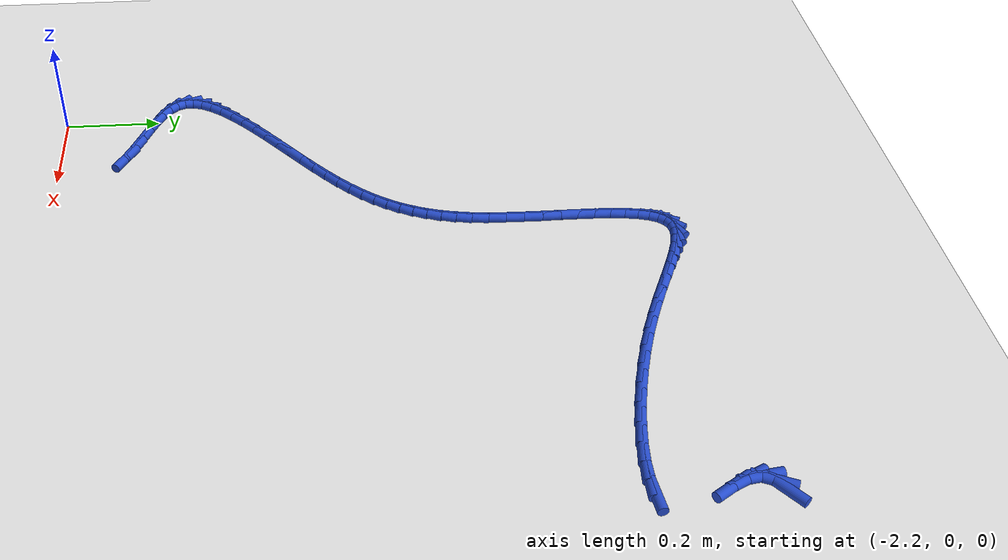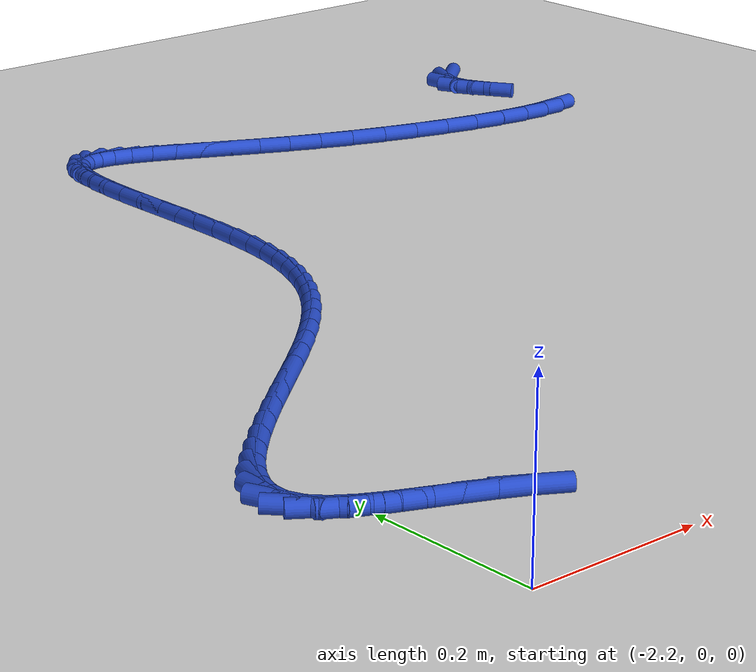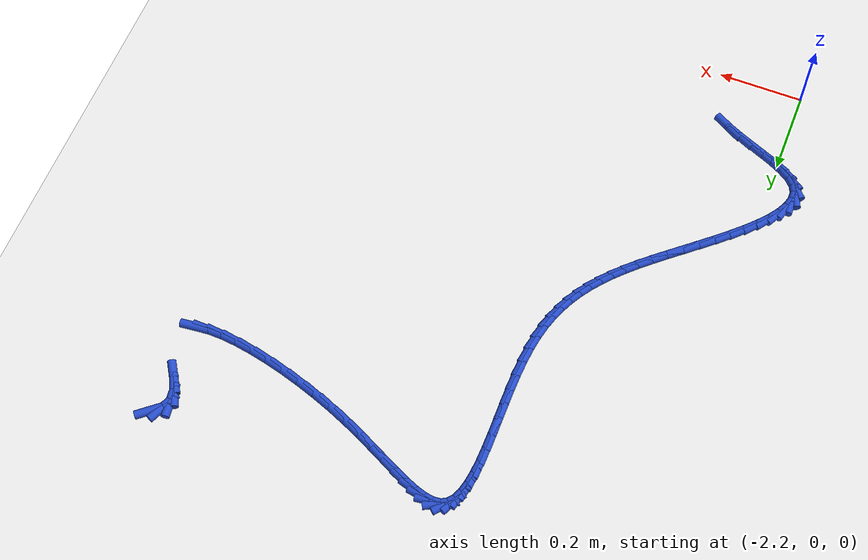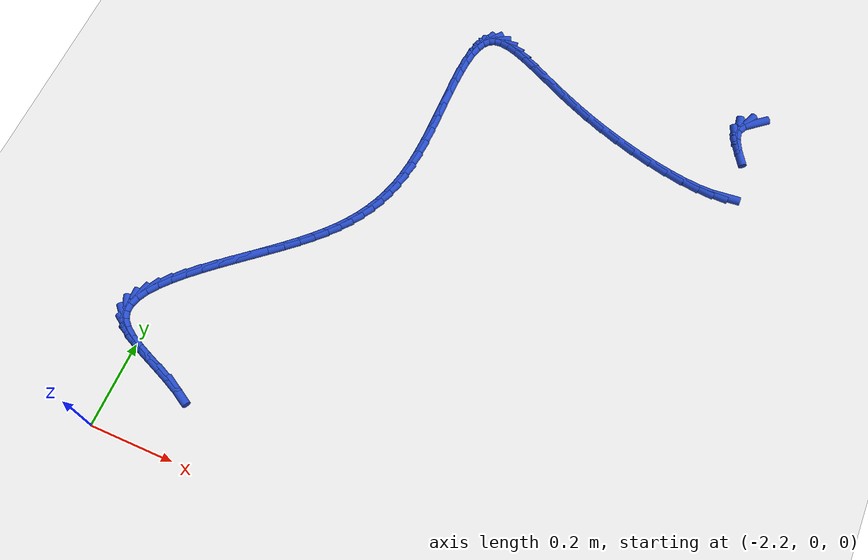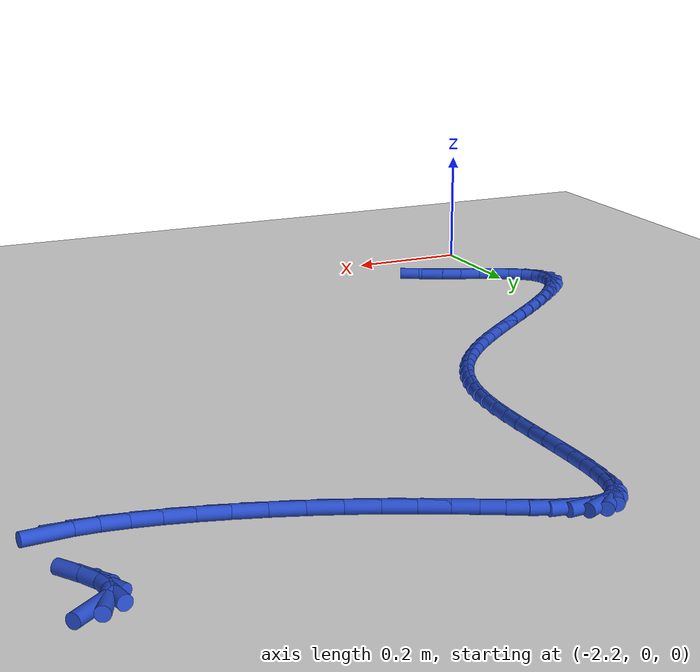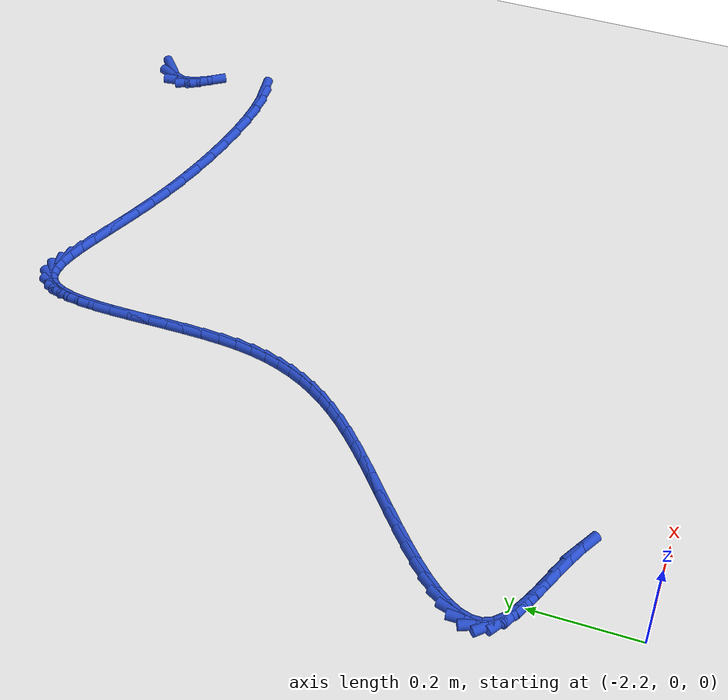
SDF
<sdf version="1.6">
 <world name="default">
  <model name="ground_plane">
   <static>1</static>
   <link name="link">
    <collision name="collision">
     <geometry><plane><normal>0 0 1</normal><size>100 100</size></plane></geometry>
     <surface><friction><ode><mu>100</mu><mu2>50</mu2></ode></friction></surface>
    </collision>
    <visual name="visual">
     <cast_shadows>0</cast_shadows>
     <geometry><plane><normal>0 0 1</normal><size>100 100</size></plane></geometry>
     <material>
      <script><uri>file://media/materials/scripts/gazebo.material</uri><name>Gazebo/WhiteGlow</name></script>
     </material>
    </visual>
   </link>
  </model>
  <model name="line">
   <link name="link_70">
    <pose>-1.099920384116828 1.2805118571543863 0.01 0 1.57 0.6831867642673207</pose>
    <collision name="collision">
     <geometry><cylinder><radius>0.01</radius><length>0.08</length></cylinder></geometry>
    </collision>
    <visual name="visual">
     <material>
      <script><name>Gazebo/Blue</name><uri>file://media/materials/scripts/gazebo.material</uri></script>
     </material>
     <geometry><cylinder><radius>0.01</radius><length>0.08</length></cylinder></geometry>
    </visual>
   </link>
   <link name="link_71">
    <pose>-1.1184490033062418 1.2654305671250845 0.01 0 1.57 1.161574097288925</pose>
    <collision name="collision">
     <geometry><cylinder><radius>0.01</radius><length>0.08</length></cylinder></geometry>
    </collision>
    <visual name="visual">
     <material>
      <script><name>Gazebo/Blue</name><uri>file://media/materials/scripts/gazebo.material</uri></script>
     </material>
     <geometry><cylinder><radius>0.01</radius><length>0.08</length></cylinder></geometry>
    </visual>
   </link>
   <link name="link_72">
    <pose>-1.1268550989956125 1.2460485900413598 0.01 0 1.57 -1.4281970652236406</pose>
    <collision name="collision">
     <geometry><cylinder><radius>0.01</radius><length>0.08</length></cylinder></geometry>
    </collision>
    <visual name="visual">
     <material>
      <script><name>Gazebo/Blue</name><uri>file://media/materials/scripts/gazebo.material</uri></script>
     </material>
     <geometry><cylinder><radius>0.01</radius><length>0.08</length></cylinder></geometry>
    </visual>
   </link>
   <link name="link_73">
    <pose>-1.12344103782641 1.222269444426144 0.01 0 1.57 -1.1134419527512758</pose>
    <collision name="collision">
     <geometry><cylinder><radius>0.01</radius><length>0.08</length></cylinder></geometry>
    </collision>
    <visual name="visual">
     <material>
      <script><name>Gazebo/Blue</name><uri>file://media/materials/scripts/gazebo.material</uri></script>
     </material>
     <geometry><cylinder><radius>0.01</radius><length>0.08</length></cylinder></geometry>
    </visual>
   </link>
   <link name="link_74">
    <pose>-1.1101076443937057 1.1951777530147727 0.01 0 1.57 -1.004112221750847</pose>
    <collision name="collision">
     <geometry><cylinder><radius>0.01</radius><length>0.08</length></cylinder></geometry>
    </collision>
    <visual name="visual">
     <material>
      <script><name>Gazebo/Blue</name><uri>file://media/materials/scripts/gazebo.material</uri></script>
     </material>
     <geometry><cylinder><radius>0.01</radius><length>0.08</length></cylinder></geometry>
    </visual>
   </link>
   <link name="link_81">
    <pose>-1.1062383961509725 1.0658347140959392 0.01 0 1.57 0.10056372766646694</pose>
    <collision name="collision">
     <geometry><cylinder><radius>0.01</radius><length>0.08</length></cylinder></geometry>
    </collision>
    <visual name="visual">
     <material>
      <script><name>Gazebo/Blue</name><uri>file://media/materials/scripts/gazebo.material</uri></script>
     </material>
     <geometry><cylinder><radius>0.01</radius><length>0.08</length></cylinder></geometry>
    </visual>
   </link>
   <link name="link_82">
    <pose>-1.134003650895144 1.0630330858577721 0.01 0 1.57 -0.01656659060833124</pose>
    <collision name="collision">
     <geometry><cylinder><radius>0.01</radius><length>0.08</length></cylinder></geometry>
    </collision>
    <visual name="visual">
     <material>
      <script><name>Gazebo/Blue</name><uri>file://media/materials/scripts/gazebo.material</uri></script>
     </material>
     <geometry><cylinder><radius>0.01</radius><length>0.08</length></cylinder></geometry>
    </visual>
   </link>
   <link name="link_83">
    <pose>-1.1668860385566817 1.0635778847536657 0.01 0 1.57 -0.09686056270876396</pose>
    <collision name="collision">
     <geometry><cylinder><radius>0.01</radius><length>0.08</length></cylinder></geometry>
    </collision>
    <visual name="visual">
     <material>
      <script><name>Gazebo/Blue</name><uri>file://media/materials/scripts/gazebo.material</uri></script>
     </material>
     <geometry><cylinder><radius>0.01</radius><length>0.08</length></cylinder></geometry>
    </visual>
   </link>
   <link name="link_84">
    <pose>-1.2039945146227147 1.0671835156576999 0.01 0 1.57 -0.15648243109726961</pose>
    <collision name="collision">
     <geometry><cylinder><radius>0.01</radius><length>0.08</length></cylinder></geometry>
    </collision>
    <visual name="visual">
     <material>
      <script><name>Gazebo/Blue</name><uri>file://media/materials/scripts/gazebo.material</uri></script>
     </material>
     <geometry><cylinder><radius>0.01</radius><length>0.08</length></cylinder></geometry>
    </visual>
   </link>
   <link name="link_85">
    <pose>-1.2444380345803745 1.0735643834439572 0.01 0 1.57 -0.20395603534226012</pose>
    <collision name="collision">
     <geometry><cylinder><radius>0.01</radius><length>0.08</length></cylinder></geometry>
    </collision>
    <visual name="visual">
     <material>
      <script><name>Gazebo/Blue</name><uri>file://media/materials/scripts/gazebo.material</uri></script>
     </material>
     <geometry><cylinder><radius>0.01</radius><length>0.08</length></cylinder></geometry>
    </visual>
   </link>
   <link name="link_86">
    <pose>-1.287325553916791 1.0824348929865188 0.01 0 1.57 -0.24422536850942414</pose>
    <collision name="collision">
     <geometry><cylinder><radius>0.01</radius><length>0.08</length></cylinder></geometry>
    </collision>
    <visual name="visual">
     <material>
      <script><name>Gazebo/Blue</name><uri>file://media/materials/scripts/gazebo.material</uri></script>
     </material>
     <geometry><cylinder><radius>0.01</radius><length>0.08</length></cylinder></geometry>
    </visual>
   </link>
   <link name="link_87">
    <pose>-1.3317660281190946 1.0935094491594661 0.01 0 1.57 -0.280483672853604</pose>
    <collision name="collision">
     <geometry><cylinder><radius>0.01</radius><length>0.08</length></cylinder></geometry>
    </collision>
    <visual name="visual">
     <material>
      <script><name>Gazebo/Blue</name><uri>file://media/materials/scripts/gazebo.material</uri></script>
     </material>
     <geometry><cylinder><radius>0.01</radius><length>0.08</length></cylinder></geometry>
    </visual>
   </link>
   <link name="link_88">
    <pose>-1.3768684126744142 1.1065024568368798 0.01 0 1.57 -0.31507938046985046</pose>
    <collision name="collision">
     <geometry><cylinder><radius>0.01</radius><length>0.08</length></cylinder></geometry>
    </collision>
    <visual name="visual">
     <material>
      <script><name>Gazebo/Blue</name><uri>file://media/materials/scripts/gazebo.material</uri></script>
     </material>
     <geometry><cylinder><radius>0.01</radius><length>0.08</length></cylinder></geometry>
    </visual>
   </link>
   <link name="link_89">
    <pose>-1.4217416630698811 1.1211283208928418 0.01 0 1.57 -0.3500404849318791</pose>
    <collision name="collision">
     <geometry><cylinder><radius>0.01</radius><length>0.08</length></cylinder></geometry>
    </collision>
    <visual name="visual">
     <material>
      <script><name>Gazebo/Blue</name><uri>file://media/materials/scripts/gazebo.material</uri></script>
     </material>
     <geometry><cylinder><radius>0.01</radius><length>0.08</length></cylinder></geometry>
    </visual>
   </link>
   <link name="link_90">
    <pose>-1.465494734792625 1.1371014462014335 0.01 0 1.57 -0.3868470926862169</pose>
    <collision name="collision">
     <geometry><cylinder><radius>0.01</radius><length>0.08</length></cylinder></geometry>
    </collision>
    <visual name="visual">
     <material>
      <script><name>Gazebo/Blue</name><uri>file://media/materials/scripts/gazebo.material</uri></script>
     </material>
     <geometry><cylinder><radius>0.01</radius><length>0.08</length></cylinder></geometry>
    </visual>
   </link>
   <link name="link_91">
    <pose>-1.5072711881035423 1.154120088410316 0.01 0 1.57 -0.4191643377994727</pose>
    <collision name="collision">
     <geometry><cylinder><radius>0.01</radius><length>0.08</length></cylinder></geometry>
    </collision>
    <visual name="visual">
     <material>
      <script><name>Gazebo/Blue</name><uri>file://media/materials/scripts/gazebo.material</uri></script>
     </material>
     <geometry><cylinder><radius>0.01</radius><length>0.08</length></cylinder></geometry>
    </visual>
   </link>
   <link name="link_92">
    <pose>-1.5466644424680127 1.1716725645557886 0.01 0 1.57 -0.44105376909332494</pose>
    <collision name="collision">
     <geometry><cylinder><radius>0.01</radius><length>0.08</length></cylinder></geometry>
    </collision>
    <visual name="visual">
     <material>
      <script><name>Gazebo/Blue</name><uri>file://media/materials/scripts/gazebo.material</uri></script>
     </material>
     <geometry><cylinder><radius>0.01</radius><length>0.08</length></cylinder></geometry>
    </visual>
   </link>
   <link name="link_93">
    <pose>-1.5835824651615769 1.1891003996783167 0.01 0 1.57 -0.4510681153422886</pose>
    <collision name="collision">
     <geometry><cylinder><radius>0.01</radius><length>0.08</length></cylinder></geometry>
    </collision>
    <visual name="visual">
     <material>
      <script><name>Gazebo/Blue</name><uri>file://media/materials/scripts/gazebo.material</uri></script>
     </material>
     <geometry><cylinder><radius>0.01</radius><length>0.08</length></cylinder></geometry>
    </visual>
   </link>
   <link name="link_94">
    <pose>-1.6179396752051254 1.2057421079419708 0.01 0 1.57 -0.4468252690239972</pose>
    <collision name="collision">
     <geometry><cylinder><radius>0.01</radius><length>0.08</length></cylinder></geometry>
    </collision>
    <visual name="visual">
     <material>
      <script><name>Gazebo/Blue</name><uri>file://media/materials/scripts/gazebo.material</uri></script>
     </material>
     <geometry><cylinder><radius>0.01</radius><length>0.08</length></cylinder></geometry>
    </visual>
   </link>
   <link name="link_95">
    <pose>-1.649650491619549 1.2209362035108218 0.01 0 1.57 -0.4241307232656373</pose>
    <collision name="collision">
     <geometry><cylinder><radius>0.01</radius><length>0.08</length></cylinder></geometry>
    </collision>
    <visual name="visual">
     <material>
      <script><name>Gazebo/Blue</name><uri>file://media/materials/scripts/gazebo.material</uri></script>
     </material>
     <geometry><cylinder><radius>0.01</radius><length>0.08</length></cylinder></geometry>
    </visual>
   </link>
   <link name="link_96">
    <pose>-1.6786293334257367 1.2340212005489395 0.01 0 1.57 -0.37555044443479474</pose>
    <collision name="collision">
     <geometry><cylinder><radius>0.01</radius><length>0.08</length></cylinder></geometry>
    </collision>
    <visual name="visual">
     <material>
      <script><name>Gazebo/Blue</name><uri>file://media/materials/scripts/gazebo.material</uri></script>
     </material>
     <geometry><cylinder><radius>0.01</radius><length>0.08</length></cylinder></geometry>
    </visual>
   </link>
   <link name="link_97">
    <pose>-1.7047906196445792 1.2443356132203949 0.01 0 1.57 -0.2877012151988591</pose>
    <collision name="collision">
     <geometry><cylinder><radius>0.01</radius><length>0.08</length></cylinder></geometry>
    </collision>
    <visual name="visual">
     <material>
      <script><name>Gazebo/Blue</name><uri>file://media/materials/scripts/gazebo.material</uri></script>
     </material>
     <geometry><cylinder><radius>0.01</radius><length>0.08</length></cylinder></geometry>
    </visual>
   </link>
   <link name="link_98">
    <pose>-1.728048769296967 1.251217955689258 0.01 0 1.57 -0.13672738874850274</pose>
    <collision name="collision">
     <geometry><cylinder><radius>0.01</radius><length>0.08</length></cylinder></geometry>
    </collision>
    <visual name="visual">
     <material>
      <script><name>Gazebo/Blue</name><uri>file://media/materials/scripts/gazebo.material</uri></script>
     </material>
     <geometry><cylinder><radius>0.01</radius><length>0.08</length></cylinder></geometry>
    </visual>
   </link>
   <link name="link_99">
    <pose>-1.7483182014037908 1.2540067421196002 0.01 0 1.57 0.11385499967966944</pose>
    <collision name="collision">
     <geometry><cylinder><radius>0.01</radius><length>0.08</length></cylinder></geometry>
    </collision>
    <visual name="visual">
     <material>
      <script><name>Gazebo/Blue</name><uri>file://media/materials/scripts/gazebo.material</uri></script>
     </material>
     <geometry><cylinder><radius>0.01</radius><length>0.08</length></cylinder></geometry>
    </visual>
   </link>
   <link name="link_100">
    <pose>-1.765513334985941 1.252040486675492 0.01 0 1.57 0.4838469332792329</pose>
    <collision name="collision">
     <geometry><cylinder><radius>0.01</radius><length>0.08</length></cylinder></geometry>
    </collision>
    <visual name="visual">
     <material>
      <script><name>Gazebo/Blue</name><uri>file://media/materials/scripts/gazebo.material</uri></script>
     </material>
     <geometry><cylinder><radius>0.01</radius><length>0.08</length></cylinder></geometry>
    </visual>
   </link>
   <link name="link_101">
    <pose>-1.7795507868649199 1.2446636615476747 0.01 0 1.57 0.8703749622442536</pose>
    <collision name="collision">
     <geometry><cylinder><radius>0.01</radius><length>0.08</length></cylinder></geometry>
    </collision>
    <visual name="visual">
     <material>
      <script><name>Gazebo/Blue</name><uri>file://media/materials/scripts/gazebo.material</uri></script>
     </material>
     <geometry><cylinder><radius>0.01</radius><length>0.08</length></cylinder></geometry>
    </visual>
   </link>
   <link name="link_102">
    <pose>-1.7905103596440324 1.2316631199302177 0.01 0 1.57 1.1438022326609099</pose>
    <collision name="collision">
     <geometry><cylinder><radius>0.01</radius><length>0.08</length></cylinder></geometry>
    </collision>
    <visual name="visual">
     <material>
      <script><name>Gazebo/Blue</name><uri>file://media/materials/scripts/gazebo.material</uri></script>
     </material>
     <geometry><cylinder><radius>0.01</radius><length>0.08</length></cylinder></geometry>
    </visual>
   </link>
   <link name="link_103">
    <pose>-1.7987446627440182 1.213565268134376 0.01 0 1.57 1.3159304049566174</pose>
    <collision name="collision">
     <geometry><cylinder><radius>0.01</radius><length>0.08</length></cylinder></geometry>
    </collision>
    <visual name="visual">
     <material>
      <script><name>Gazebo/Blue</name><uri>file://media/materials/scripts/gazebo.material</uri></script>
     </material>
     <geometry><cylinder><radius>0.01</radius><length>0.08</length></cylinder></geometry>
    </visual>
   </link>
   <link name="link_104">
    <pose>-1.804632259217156 1.1909668702772969 0.01 0 1.57 1.4239689037625485</pose>
    <collision name="collision">
     <geometry><cylinder><radius>0.01</radius><length>0.08</length></cylinder></geometry>
    </collision>
    <visual name="visual">
     <material>
      <script><name>Gazebo/Blue</name><uri>file://media/materials/scripts/gazebo.material</uri></script>
     </material>
     <geometry><cylinder><radius>0.01</radius><length>0.08</length></cylinder></geometry>
    </visual>
   </link>
   <link name="link_105">
    <pose>-1.808551712115724 1.1644646904761278 0.01 0 1.57 1.4927953892031909</pose>
    <collision name="collision">
     <geometry><cylinder><radius>0.01</radius><length>0.08</length></cylinder></geometry>
    </collision>
    <visual name="visual">
     <material>
      <script><name>Gazebo/Blue</name><uri>file://media/materials/scripts/gazebo.material</uri></script>
     </material>
     <geometry><cylinder><radius>0.01</radius><length>0.08</length></cylinder></geometry>
    </visual>
   </link>
   <link name="link_106">
    <pose>-1.810881584492001 1.1346554928480164 0.01 0 1.57 1.5364041802209978</pose>
    <collision name="collision">
     <geometry><cylinder><radius>0.01</radius><length>0.08</length></cylinder></geometry>
    </collision>
    <visual name="visual">
     <material>
      <script><name>Gazebo/Blue</name><uri>file://media/materials/scripts/gazebo.material</uri></script>
     </material>
     <geometry><cylinder><radius>0.01</radius><length>0.08</length></cylinder></geometry>
    </visual>
   </link>
   <link name="link_107">
    <pose>-1.8120004393982652 1.102136041510109 0.01 0 1.57 1.5625269175999292</pose>
    <collision name="collision">
     <geometry><cylinder><radius>0.01</radius><length>0.08</length></cylinder></geometry>
    </collision>
    <visual name="visual">
     <material>
      <script><name>Gazebo/Blue</name><uri>file://media/materials/scripts/gazebo.material</uri></script>
     </material>
     <geometry><cylinder><radius>0.01</radius><length>0.08</length></cylinder></geometry>
    </visual>
   </link>
   <link name="link_108">
    <pose>-1.8122868398867953 1.0675031005795537 0.01 0 1.57 -1.5661630979140662</pose>
    <collision name="collision">
     <geometry><cylinder><radius>0.01</radius><length>0.08</length></cylinder></geometry>
    </collision>
    <visual name="visual">
     <material>
      <script><name>Gazebo/Blue</name><uri>file://media/materials/scripts/gazebo.material</uri></script>
     </material>
     <geometry><cylinder><radius>0.01</radius><length>0.08</length></cylinder></geometry>
    </visual>
   </link>
   <link name="link_109">
    <pose>-1.8121193490098704 1.0313534341734967 0.01 0 1.57 -1.5642460663271653</pose>
    <collision name="collision">
     <geometry><cylinder><radius>0.01</radius><length>0.08</length></cylinder></geometry>
    </collision>
    <visual name="visual">
     <material>
      <script><name>Gazebo/Blue</name><uri>file://media/materials/scripts/gazebo.material</uri></script>
     </material>
     <geometry><cylinder><radius>0.01</radius><length>0.08</length></cylinder></geometry>
    </visual>
   </link>
   <link name="link_110">
    <pose>-1.8118765298197688 0.994283806409087 0.01 0 1.57 1.5691806292267187</pose>
    <collision name="collision">
     <geometry><cylinder><radius>0.01</radius><length>0.08</length></cylinder></geometry>
    </collision>
    <visual name="visual">
     <material>
      <script><name>Gazebo/Blue</name><uri>file://media/materials/scripts/gazebo.material</uri></script>
     </material>
     <geometry><cylinder><radius>0.01</radius><length>0.08</length></cylinder></geometry>
    </visual>
   </link>
   <link name="link_111">
    <pose>-1.8119369453687688 0.956890981403471 0.01 0 1.57 1.550803619895009</pose>
    <collision name="collision">
     <geometry><cylinder><radius>0.01</radius><length>0.08</length></cylinder></geometry>
    </collision>
    <visual name="visual">
     <material>
      <script><name>Gazebo/Blue</name><uri>file://media/materials/scripts/gazebo.material</uri></script>
     </material>
     <geometry><cylinder><radius>0.01</radius><length>0.08</length></cylinder></geometry>
    </visual>
   </link>
   <link name="link_112">
    <pose>-1.81267915870915 0.9197717232737959 0.01 0 1.57 1.521109599456121</pose>
    <collision name="collision">
     <geometry><cylinder><radius>0.01</radius><length>0.08</length></cylinder></geometry>
    </collision>
    <visual name="visual">
     <material>
      <script><name>Gazebo/Blue</name><uri>file://media/materials/scripts/gazebo.material</uri></script>
     </material>
     <geometry><cylinder><radius>0.01</radius><length>0.08</length></cylinder></geometry>
    </visual>
   </link>
   <link name="link_113">
    <pose>-1.814481732893189 0.8835227961372083 0.01 0 1.57 1.4778695890496247</pose>
    <collision name="collision">
     <geometry><cylinder><radius>0.01</radius><length>0.08</length></cylinder></geometry>
    </collision>
    <visual name="visual">
     <material>
      <script><name>Gazebo/Blue</name><uri>file://media/materials/scripts/gazebo.material</uri></script>
     </material>
     <geometry><cylinder><radius>0.01</radius><length>0.08</length></cylinder></geometry>
    </visual>
   </link>
   <link name="link_114">
    <pose>-1.8177232309731663 0.8487409641108571 0.01 0 1.57 1.417844145448837</pose>
    <collision name="collision">
     <geometry><cylinder><radius>0.01</radius><length>0.08</length></cylinder></geometry>
    </collision>
    <visual name="visual">
     <material>
      <script><name>Gazebo/Blue</name><uri>file://media/materials/scripts/gazebo.material</uri></script>
     </material>
     <geometry><cylinder><radius>0.01</radius><length>0.08</length></cylinder></geometry>
    </visual>
   </link>
   <link name="link_115">
    <pose>-1.8227703702240423 0.816000538497493 0.01 0 1.57 1.3458328397219106</pose>
    <collision name="collision">
     <geometry><cylinder><radius>0.01</radius><length>0.08</length></cylinder></geometry>
    </collision>
    <visual name="visual">
     <material>
      <script><name>Gazebo/Blue</name><uri>file://media/materials/scripts/gazebo.material</uri></script>
     </material>
     <geometry><cylinder><radius>0.01</radius><length>0.08</length></cylinder></geometry>
    </visual>
   </link>
   <link name="link_116">
    <pose>-1.8297625947104277 0.7854450506626793 0.01 0 1.57 1.270145540784517</pose>
    <collision name="collision">
     <geometry><cylinder><radius>0.01</radius><length>0.08</length></cylinder></geometry>
    </collision>
    <visual name="visual">
     <material>
      <script><name>Gazebo/Blue</name><uri>file://media/materials/scripts/gazebo.material</uri></script>
     </material>
     <geometry><cylinder><radius>0.01</radius><length>0.08</length></cylinder></geometry>
    </visual>
   </link>
   <link name="link_117">
    <pose>-1.8386346580965967 0.7568300561183093 0.01 0 1.57 1.1932953068767775</pose>
    <collision name="collision">
     <geometry><cylinder><radius>0.01</radius><length>0.08</length></cylinder></geometry>
    </collision>
    <visual name="visual">
     <material>
      <script><name>Gazebo/Blue</name><uri>file://media/materials/scripts/gazebo.material</uri></script>
     </material>
     <geometry><cylinder><radius>0.01</radius><length>0.08</length></cylinder></geometry>
    </visual>
   </link>
   <link name="link_118">
    <pose>-1.8493140003442818 0.7298972477819322 0.01 0 1.57 1.1175975115203591</pose>
    <collision name="collision">
     <geometry><cylinder><radius>0.01</radius><length>0.08</length></cylinder></geometry>
    </collision>
    <visual name="visual">
     <material>
      <script><name>Gazebo/Blue</name><uri>file://media/materials/scripts/gazebo.material</uri></script>
     </material>
     <geometry><cylinder><radius>0.01</radius><length>0.08</length></cylinder></geometry>
    </visual>
   </link>
   <link name="link_119">
    <pose>-1.8617380700065183 0.7043861473368137 0.01 0 1.57 1.0433122629384488</pose>
    <collision name="collision">
     <geometry><cylinder><radius>0.01</radius><length>0.08</length></cylinder></geometry>
    </collision>
    <visual name="visual">
     <material>
      <script><name>Gazebo/Blue</name><uri>file://media/materials/scripts/gazebo.material</uri></script>
     </material>
     <geometry><cylinder><radius>0.01</radius><length>0.08</length></cylinder></geometry>
    </visual>
   </link>
   <link name="link_120">
    <pose>-1.8759342681840074 0.6800167624257866 0.01 0 1.57 0.9721367820199105</pose>
    <collision name="collision">
     <geometry><cylinder><radius>0.01</radius><length>0.08</length></cylinder></geometry>
    </collision>
    <visual name="visual">
     <material>
      <script><name>Gazebo/Blue</name><uri>file://media/materials/scripts/gazebo.material</uri></script>
     </material>
     <geometry><cylinder><radius>0.01</radius><length>0.08</length></cylinder></geometry>
    </visual>
   </link>
   <link name="link_121">
    <pose>-1.8919775443415838 0.6564987856897833 0.01 0 1.57 0.9067660774421643</pose>
    <collision name="collision">
     <geometry><cylinder><radius>0.01</radius><length>0.08</length></cylinder></geometry>
    </collision>
    <visual name="visual">
     <material>
      <script><name>Gazebo/Blue</name><uri>file://media/materials/scripts/gazebo.material</uri></script>
     </material>
     <geometry><cylinder><radius>0.01</radius><length>0.08</length></cylinder></geometry>
    </visual>
   </link>
   <link name="link_122">
    <pose>-1.9099432792097177 0.6335418162122403 0.01 0 1.57 0.8491520400218076</pose>
    <collision name="collision">
     <geometry><cylinder><radius>0.01</radius><length>0.08</length></cylinder></geometry>
    </collision>
    <visual name="visual">
     <material>
      <script><name>Gazebo/Blue</name><uri>file://media/materials/scripts/gazebo.material</uri></script>
     </material>
     <geometry><cylinder><radius>0.01</radius><length>0.08</length></cylinder></geometry>
    </visual>
   </link>
   <link name="link_123">
    <pose>-1.92990685351888 0.6108554530765952 0.01 0 1.57 0.8003572411388791</pose>
    <collision name="collision">
     <geometry><cylinder><radius>0.01</radius><length>0.08</length></cylinder></geometry>
    </collision>
    <visual name="visual">
     <material>
      <script><name>Gazebo/Blue</name><uri>file://media/materials/scripts/gazebo.material</uri></script>
     </material>
     <geometry><cylinder><radius>0.01</radius><length>0.08</length></cylinder></geometry>
    </visual>
   </link>
   <link name="link_124">
    <pose>-1.951943647999542 0.588149295366285 0.01 0 1.57 0.7606363002525677</pose>
    <collision name="collision">
     <geometry><cylinder><radius>0.01</radius><length>0.08</length></cylinder></geometry>
    </collision>
    <visual name="visual">
     <material>
      <script><name>Gazebo/Blue</name><uri>file://media/materials/scripts/gazebo.material</uri></script>
     </material>
     <geometry><cylinder><radius>0.01</radius><length>0.08</length></cylinder></geometry>
    </visual>
   </link>
   <link name="link_125">
    <pose>-1.9761290433821743 0.5651329421647461 0.01 0 1.57 0.7296553212836987</pose>
    <collision name="collision">
     <geometry><cylinder><radius>0.01</radius><length>0.08</length></cylinder></geometry>
    </collision>
    <visual name="visual">
     <material>
      <script><name>Gazebo/Blue</name><uri>file://media/materials/scripts/gazebo.material</uri></script>
     </material>
     <geometry><cylinder><radius>0.01</radius><length>0.08</length></cylinder></geometry>
    </visual>
   </link>
   <link name="link_126">
    <pose>-2.002535662762827 0.5415175817642451 0.01 0 1.57 0.7082482097998917</pose>
    <collision name="collision">
     <geometry><cylinder><radius>0.01</radius><length>0.08</length></cylinder></geometry>
    </collision>
    <visual name="visual">
     <material>
      <script><name>Gazebo/Blue</name><uri>file://media/materials/scripts/gazebo.material</uri></script>
     </material>
     <geometry><cylinder><radius>0.01</radius><length>0.08</length></cylinder></geometry>
    </visual>
   </link>
   <link name="link_127">
    <pose>-2.0309563070664263 0.5171756623621715 0.01 0 1.57 0.6974983875884053</pose>
    <collision name="collision">
     <geometry><cylinder><radius>0.01</radius><length>0.08</length></cylinder></geometry>
    </collision>
    <visual name="visual">
     <material>
      <script><name>Gazebo/Blue</name><uri>file://media/materials/scripts/gazebo.material</uri></script>
     </material>
     <geometry><cylinder><radius>0.01</radius><length>0.08</length></cylinder></geometry>
    </visual>
   </link>
   <link name="link_128">
    <pose>-2.0606671160925667 0.4922773809858814 0.01 0 1.57 0.6960619344757812</pose>
    <collision name="collision">
     <geometry><cylinder><radius>0.01</radius><length>0.08</length></cylinder></geometry>
    </collision>
    <visual name="visual">
     <material>
      <script><name>Gazebo/Blue</name><uri>file://media/materials/scripts/gazebo.material</uri></script>
     </material>
     <geometry><cylinder><radius>0.01</radius><length>0.08</length></cylinder></geometry>
    </visual>
   </link>
   <link name="link_129">
    <pose>-2.0908884447564837 0.467025083170205 0.01 0 1.57 0.7034192097844486</pose>
    <collision name="collision">
     <geometry><cylinder><radius>0.01</radius><length>0.08</length></cylinder></geometry>
    </collision>
    <visual name="visual">
     <material>
      <script><name>Gazebo/Blue</name><uri>file://media/materials/scripts/gazebo.material</uri></script>
     </material>
     <geometry><cylinder><radius>0.01</radius><length>0.08</length></cylinder></geometry>
    </visual>
   </link>
   <link name="link_130">
    <pose>-2.1208406479734103 0.4416211144499718 0.01 0 1.57 0.7200590748144149</pose>
    <collision name="collision">
     <geometry><cylinder><radius>0.01</radius><length>0.08</length></cylinder></geometry>
    </collision>
    <visual name="visual">
     <material>
      <script><name>Gazebo/Blue</name><uri>file://media/materials/scripts/gazebo.material</uri></script>
     </material>
     <geometry><cylinder><radius>0.01</radius><length>0.08</length></cylinder></geometry>
    </visual>
   </link>
   <link name="link_131">
    <pose>-2.1497440806585812 0.416267820360011 0.01 0 1.57 0.7475679762947839</pose>
    <collision name="collision">
     <geometry><cylinder><radius>0.01</radius><length>0.08</length></cylinder></geometry>
    </collision>
    <visual name="visual">
     <material>
      <script><name>Gazebo/Blue</name><uri>file://media/materials/scripts/gazebo.material</uri></script>
     </material>
     <geometry><cylinder><radius>0.01</radius><length>0.08</length></cylinder></geometry>
    </visual>
   </link>
   <link name="link_132">
    <pose>-2.1768190977272304 0.3911675464351532 0.01 0 1.57 0.7890215460621373</pose>
    <collision name="collision">
     <geometry><cylinder><radius>0.01</radius><length>0.08</length></cylinder></geometry>
    </collision>
    <visual name="visual">
     <material>
      <script><name>Gazebo/Blue</name><uri>file://media/materials/scripts/gazebo.material</uri></script>
     </material>
     <geometry><cylinder><radius>0.01</radius><length>0.08</length></cylinder></geometry>
    </visual>
   </link>
   <link name="link_133">
    <pose>-2.20128605409459 0.3665226382102276 0.01 0 1.57 0.8498345856612731</pose>
    <collision name="collision">
     <geometry><cylinder><radius>0.01</radius><length>0.08</length></cylinder></geometry>
    </collision>
    <visual name="visual">
     <material>
      <script><name>Gazebo/Blue</name><uri>file://media/materials/scripts/gazebo.material</uri></script>
     </material>
     <geometry><cylinder><radius>0.01</radius><length>0.08</length></cylinder></geometry>
    </visual>
   </link>
   <link name="link_134">
    <pose>-2.2223653046758978 0.342535441220064 0.01 0 1.57 0.9393985801570118</pose>
    <collision name="collision">
     <geometry><cylinder><radius>0.01</radius><length>0.08</length></cylinder></geometry>
    </collision>
    <visual name="visual">
     <material>
      <script><name>Gazebo/Blue</name><uri>file://media/materials/scripts/gazebo.material</uri></script>
     </material>
     <geometry><cylinder><radius>0.01</radius><length>0.08</length></cylinder></geometry>
    </visual>
   </link>
   <link name="link_135">
    <pose>-2.2392772043863847 0.3194083009994915 0.01 0 1.57 1.0739121832897147</pose>
    <collision name="collision">
     <geometry><cylinder><radius>0.01</radius><length>0.08</length></cylinder></geometry>
    </collision>
    <visual name="visual">
     <material>
      <script><name>Gazebo/Blue</name><uri>file://media/materials/scripts/gazebo.material</uri></script>
     </material>
     <geometry><cylinder><radius>0.01</radius><length>0.08</length></cylinder></geometry>
    </visual>
   </link>
   <link name="link_136">
    <pose>-2.2512421081412857 0.2973435630833406 0.01 0 1.57 1.2794160297211439</pose>
    <collision name="collision">
     <geometry><cylinder><radius>0.01</radius><length>0.08</length></cylinder></geometry>
    </collision>
    <visual name="visual">
     <material>
      <script><name>Gazebo/Blue</name><uri>file://media/materials/scripts/gazebo.material</uri></script>
     </material>
     <geometry><cylinder><radius>0.01</radius><length>0.08</length></cylinder></geometry>
    </visual>
   </link>
   <link name="link_137">
    <pose>-2.2574803708558346 0.2765435730064406 0.01 0 1.57 -1.5569336219259398</pose>
    <collision name="collision">
     <geometry><cylinder><radius>0.01</radius><length>0.08</length></cylinder></geometry>
    </collision>
    <visual name="visual">
     <material>
      <script><name>Gazebo/Blue</name><uri>file://media/materials/scripts/gazebo.material</uri></script>
     </material>
     <geometry><cylinder><radius>0.01</radius><length>0.08</length></cylinder></geometry>
    </visual>
   </link>
   <link name="link_138">
    <pose>-2.2572123474452654 0.2572106763036212 0.01 0 1.57 -1.1666811582883112</pose>
    <collision name="collision">
     <geometry><cylinder><radius>0.01</radius><length>0.08</length></cylinder></geometry>
    </collision>
    <visual name="visual">
     <material>
      <script><name>Gazebo/Blue</name><uri>file://media/materials/scripts/gazebo.material</uri></script>
     </material>
     <geometry><cylinder><radius>0.01</radius><length>0.08</length></cylinder></geometry>
    </visual>
   </link>
   <link name="link_139">
    <pose>-2.249658511383025 0.23954718421609758 0.01 0 1.57 -0.8102157862805611</pose>
    <collision name="collision">
     <geometry><cylinder><radius>0.01</radius><length>0.08</length></cylinder></geometry>
    </collision>
    <visual name="visual">
     <material>
      <script><name>Gazebo/Blue</name><uri>file://media/materials/scripts/gazebo.material</uri></script>
     </material>
     <geometry><cylinder><radius>0.01</radius><length>0.08</length></cylinder></geometry>
    </visual>
   </link>
   <link name="link_140">
    <pose>-2.234503874455427 0.2236210377255952 0.01 0 1.57 -0.5941348412696078</pose>
    <collision name="collision">
     <geometry><cylinder><radius>0.01</radius><length>0.08</length></cylinder></geometry>
    </collision>
    <visual name="visual">
     <material>
      <script><name>Gazebo/Blue</name><uri>file://media/materials/scripts/gazebo.material</uri></script>
     </material>
     <geometry><cylinder><radius>0.01</radius><length>0.08</length></cylinder></geometry>
    </visual>
   </link>
   <link name="link_141">
    <pose>-2.212951474088381 0.20906108055650965 0.01 0 1.57 -0.47674482482598246</pose>
    <collision name="collision">
     <geometry><cylinder><radius>0.01</radius><length>0.08</length></cylinder></geometry>
    </collision>
    <visual name="visual">
     <material>
      <script><name>Gazebo/Blue</name><uri>file://media/materials/scripts/gazebo.material</uri></script>
     </material>
     <geometry><cylinder><radius>0.01</radius><length>0.08</length></cylinder></geometry>
    </visual>
   </link>
   <link name="link_142">
    <pose>-2.18651393057787 0.1954066078870073 0.01 0 1.57 -0.4171249957970674</pose>
    <collision name="collision">
     <geometry><cylinder><radius>0.01</radius><length>0.08</length></cylinder></geometry>
    </collision>
    <visual name="visual">
     <material>
      <script><name>Gazebo/Blue</name><uri>file://media/materials/scripts/gazebo.material</uri></script>
     </material>
     <geometry><cylinder><radius>0.01</radius><length>0.08</length></cylinder></geometry>
    </visual>
   </link>
   <link name="link_143">
    <pose>-2.1567038642198737 0.18219691489525444 0.01 0 1.57 -0.3955925515198854</pose>
    <collision name="collision">
     <geometry><cylinder><radius>0.01</radius><length>0.08</length></cylinder></geometry>
    </collision>
    <visual name="visual">
     <material>
      <script><name>Gazebo/Blue</name><uri>file://media/materials/scripts/gazebo.material</uri></script>
     </material>
     <geometry><cylinder><radius>0.01</radius><length>0.08</length></cylinder></geometry>
    </visual>
   </link>
   <link name="link_144">
    <pose>-2.1250338953103745 0.16897129675941752 0.01 0 1.57 -0.40437895571661236</pose>
    <collision name="collision">
     <geometry><cylinder><radius>0.01</radius><length>0.08</length></cylinder></geometry>
    </collision>
    <visual name="visual">
     <material>
      <script><name>Gazebo/Blue</name><uri>file://media/materials/scripts/gazebo.material</uri></script>
     </material>
     <geometry><cylinder><radius>0.01</radius><length>0.08</length></cylinder></geometry>
    </visual>
   </link>
   <link name="link_145">
    <pose>-2.093016644145352 0.15526904865766294 0.01 0 1.57 -0.4430495648619455</pose>
    <collision name="collision">
     <geometry><cylinder><radius>0.01</radius><length>0.08</length></cylinder></geometry>
    </collision>
    <visual name="visual">
     <material>
      <script><name>Gazebo/Blue</name><uri>file://media/materials/scripts/gazebo.material</uri></script>
     </material>
     <geometry><cylinder><radius>0.01</radius><length>0.08</length></cylinder></geometry>
    </visual>
   </link>
   <link name="link_146">
    <pose>-2.062164731020787 0.14062946576815652 0.01 0 1.57 -0.517491508567511</pose>
    <collision name="collision">
     <geometry><cylinder><radius>0.01</radius><length>0.08</length></cylinder></geometry>
    </collision>
    <visual name="visual">
     <material>
      <script><name>Gazebo/Blue</name><uri>file://media/materials/scripts/gazebo.material</uri></script>
     </material>
     <geometry><cylinder><radius>0.01</radius><length>0.08</length></cylinder></geometry>
    </visual>
   </link>
  </model>
 </world>
</sdf>
